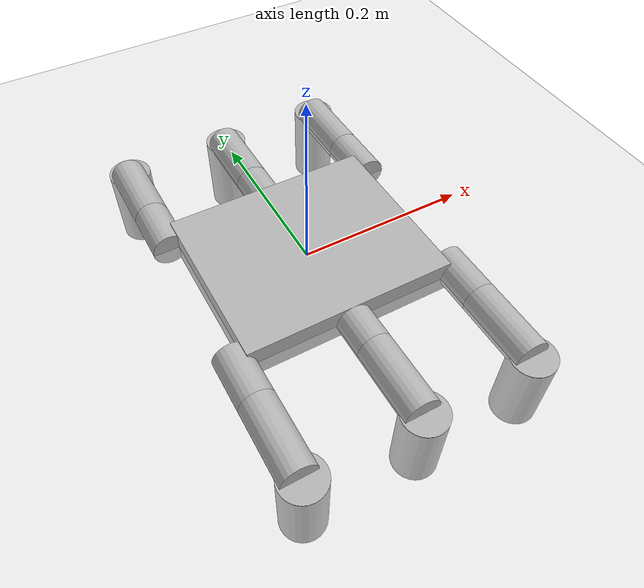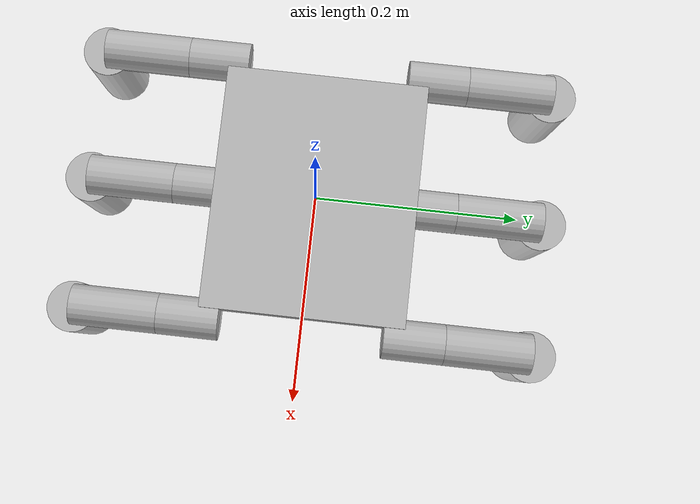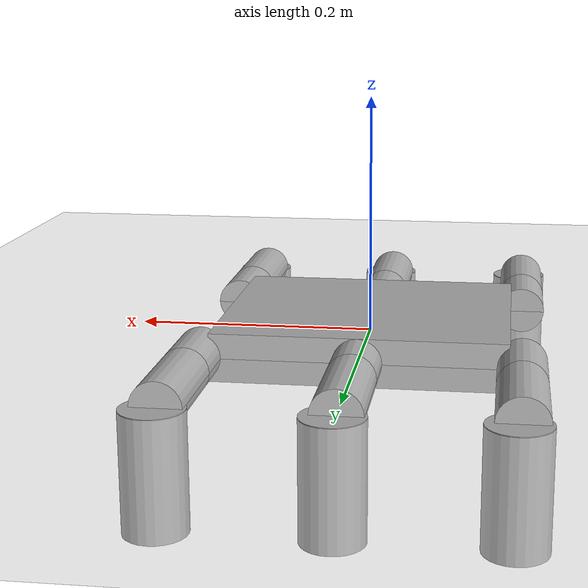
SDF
<?xml version="1.0"?>
<sdf version="1.5">
    <world name="default">
        <!-- A global light source -->
        <include>
            <uri>model://sun</uri>
        </include>
        <!-- A ground plane -->
        <include>
            <uri>model://ground_plane</uri>
        </include>
        <include>
            <pose>0 0 0 0 0 0</pose>
            <uri>model://hexapod</uri>
        </include>

    </world>
</sdf>

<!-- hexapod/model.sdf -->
<sdf version='1.5'>
    <model name='pexod'>

      <link name='base_link'>
        <pose>0 0 0 0 -0 0</pose>
        <inertial>
          <pose>0 0 0 0 -0 0</pose>
          <mass>1.031</mass>
          <inertia>
            <ixx>0.00357413</ixx>
            <ixy>0</ixy>
            <ixz>0</ixz>
            <iyy>0.00508627</iyy>
            <iyz>0</iyz>
            <izz>0.00838547</izz>
          </inertia>
        </inertial>
        <collision name='base_link_collision'>
          <pose>0 0 0 0 -0 0</pose>
          <geometry>
            <box>
              <size>0.24 0.2 0.04</size>
            </box>
          </geometry>
        </collision>
        <visual name='base_link_visual'>
          <pose>0 0 0 0 -0 0</pose>
          <geometry>
            <box>
              <size>0.24 0.2 0.04</size>
            </box>
          </geometry>
        </visual>
      </link>
      <link name='leg_0_1'>
        <pose>0.12 -0.08 0 0 -0 0</pose>
        <inertial>
          <pose>0.01 -0.03 0 1.5708 -0 0</pose>
          <mass>0.02</mass>
          <inertia>
            <ixx>8e-06</ixx>
            <ixy>0</ixy>
            <ixz>0</ixz>
            <iyy>8e-06</iyy>
            <iyz>0</iyz>
            <izz>6.66667e-07</izz>
          </inertia>
        </inertial>
        <collision name='leg_0_1_collision'>
          <pose>0.01 -0.03 0 1.5708 -0 0</pose>
          <geometry>
            <cylinder>
              <length>0.06</length>
              <radius>0.02</radius>
            </cylinder>
          </geometry>
        </collision>
        <visual name='leg_0_1_visual'>
          <pose>0.01 -0.03 0 1.5708 -0 0</pose>
          <geometry>
            <cylinder>
              <length>0.06</length>
              <radius>0.02</radius>
            </cylinder>
          </geometry>
        </visual>
      </link>
      <joint name='body_leg_0' type='revolute'>
        <child>leg_0_1</child>
        <parent>base_link</parent>
        <axis>
          <xyz>0 0 1</xyz>
          <limit>
            <lower>-0.785398</lower>
            <upper>0.785398</upper>
            <effort>20</effort>
            <velocity>2</velocity>
          </limit>
          <dynamics>
            <spring_reference>0</spring_reference>
            <spring_stiffness>0</spring_stiffness>
          </dynamics>
          <use_parent_model_frame>1</use_parent_model_frame>
        </axis>
      </joint>
      <link name='leg_0_2'>
        <pose>0.12 -0.14 0 0 -0 0</pose>
        <inertial>
          <pose>0.01 -0.0425 0 1.5708 -0 0</pose>
          <mass>0.184</mass>
          <inertia>
            <ixx>0.000129183</ixx>
            <ixy>0</ixy>
            <ixz>0</ixz>
            <iyy>0.000129183</iyy>
            <iyz>0</iyz>
            <izz>6.13333e-06</izz>
          </inertia>
        </inertial>
        <collision name='leg_0_2_collision'>
          <pose>0.01 -0.0425 0 1.5708 -0 0</pose>
          <geometry>
            <cylinder>
              <length>0.085</length>
              <radius>0.02</radius>
            </cylinder>
          </geometry>
        </collision>
        <visual name='leg_0_2_visual'>
          <pose>0.01 -0.0425 0 1.5708 -0 0</pose>
          <geometry>
            <cylinder>
              <length>0.085</length>
              <radius>0.02</radius>
            </cylinder>
          </geometry>
        </visual>
      </link>
      <joint name='leg_0_1_2' type='revolute'>
        <child>leg_0_2</child>
        <parent>leg_0_1</parent>
        <axis>
          <xyz>1 0 0</xyz>
          <limit>
            <lower>-0.785398</lower>
            <upper>0.785398</upper>
            <effort>20</effort>
            <velocity>2</velocity>
          </limit>
          <dynamics>
            <spring_reference>0</spring_reference>
            <spring_stiffness>0</spring_stiffness>
          </dynamics>
          <use_parent_model_frame>1</use_parent_model_frame>
        </axis>
      </joint>

      <link name='leg_0_3'>
        <pose>0.12 -0.225 0 1.5708 -0 0</pose>
        <inertial>
          <pose>0.0125 -0.0475 0 1.5708 -0 0</pose>
          <mass>0.184</mass>
          <inertia>
            <ixx>0.000129183</ixx>
            <ixy>0</ixy>
            <ixz>0</ixz>
            <iyy>0.000129183</iyy>
            <iyz>0</iyz>
            <izz>6.13333e-06</izz>
          </inertia>
        </inertial>
        <collision name='leg_0_3_collision'>
          <pose>0.0125 -0.0475 0 1.5708 -0 0</pose>
          <geometry>
            <cylinder>
              <length>0.095</length>
              <radius>0.025</radius>
            </cylinder>
          </geometry>
        </collision>
        <visual name='leg_0_3_visual'>
          <pose>0.0125 -0.0475 0 1.5708 -0 0</pose>
          <geometry>
            <cylinder>
              <length>0.095</length>
              <radius>0.025</radius>
            </cylinder>
          </geometry>
        </visual>
      </link>

      <joint name='leg_0_2_3' type='revolute'>
        <child>leg_0_3</child>
        <parent>leg_0_2</parent>
        <axis>
          <xyz>1 0 0</xyz>
          <limit>
            <lower>-0.785398</lower>
            <upper>0.785398</upper>
            <effort>20</effort>
            <velocity>2</velocity>
          </limit>
          <dynamics>
            <spring_reference>0</spring_reference>
            <spring_stiffness>0</spring_stiffness>
          </dynamics>
          <use_parent_model_frame>1</use_parent_model_frame>
        </axis>
      </joint>

      <link name='leg_1_1'>
        <pose>-0.01 -0.08 0 0 -0 0</pose>
        <inertial>
          <pose>0.01 -0.03 0 1.5708 -0 0</pose>
          <mass>0.02</mass>
          <inertia>
            <ixx>8e-06</ixx>
            <ixy>0</ixy>
            <ixz>0</ixz>
            <iyy>8e-06</iyy>
            <iyz>0</iyz>
            <izz>6.66667e-07</izz>
          </inertia>
        </inertial>
        <collision name='leg_1_1_collision'>
          <pose>0.01 -0.03 0 1.5708 -0 0</pose>
          <geometry>
            <cylinder>
              <length>0.06</length>
              <radius>0.02</radius>
            </cylinder>
          </geometry>
        </collision>
        <visual name='leg_1_1_visual'>
          <pose>0.01 -0.03 0 1.5708 -0 0</pose>
          <geometry>
            <cylinder>
              <length>0.06</length>
              <radius>0.02</radius>
            </cylinder>
          </geometry>
        </visual>
      </link>
      <joint name='body_leg_1' type='revolute'>
        <child>leg_1_1</child>
        <parent>base_link</parent>
        <axis>
          <xyz>0 0 1</xyz>
          <limit>
            <lower>-0.785398</lower>
            <upper>0.785398</upper>
            <effort>20</effort>
            <velocity>2</velocity>
          </limit>
          <dynamics>
            <spring_reference>0</spring_reference>
            <spring_stiffness>0</spring_stiffness>
          </dynamics>
          <use_parent_model_frame>1</use_parent_model_frame>
        </axis>
      </joint>
      <link name='leg_1_2'>
        <pose>-0.01 -0.14 0 0 -0 0</pose>
        <inertial>
          <pose>0.01 -0.0425 0 1.5708 -0 0</pose>
          <mass>0.184</mass>
          <inertia>
            <ixx>0.000129183</ixx>
            <ixy>0</ixy>
            <ixz>0</ixz>
            <iyy>0.000129183</iyy>
            <iyz>0</iyz>
            <izz>6.13333e-06</izz>
          </inertia>
        </inertial>
        <collision name='leg_1_2_collision'>
          <pose>0.01 -0.0425 0 1.5708 -0 0</pose>
          <geometry>
            <cylinder>
              <length>0.085</length>
              <radius>0.02</radius>
            </cylinder>
          </geometry>
        </collision>
        <visual name='leg_1_2_visual'>
          <pose>0.01 -0.0425 0 1.5708 -0 0</pose>
          <geometry>
            <cylinder>
              <length>0.085</length>
              <radius>0.02</radius>
            </cylinder>
          </geometry>
        </visual>
      </link>
      <joint name='leg_1_1_2' type='revolute'>
        <child>leg_1_2</child>
        <parent>leg_1_1</parent>
        <axis>
          <xyz>1 0 0</xyz>
          <limit>
            <lower>-0.785398</lower>
            <upper>0.785398</upper>
            <effort>20</effort>
            <velocity>2</velocity>
          </limit>
          <dynamics>
            <spring_reference>0</spring_reference>
            <spring_stiffness>0</spring_stiffness>
          </dynamics>
          <use_parent_model_frame>1</use_parent_model_frame>
        </axis>
      </joint>
      <link name='leg_1_3'>
        <pose>-0.01 -0.225 0 1.5708 -0 0</pose>
        <inertial>
          <pose>0.0125 -0.0475 0 1.5708 -0 0</pose>
          <mass>0.184</mass>
          <inertia>
            <ixx>0.000129183</ixx>
            <ixy>0</ixy>
            <ixz>0</ixz>
            <iyy>0.000129183</iyy>
            <iyz>0</iyz>
            <izz>6.13333e-06</izz>
          </inertia>
        </inertial>
        <collision name='leg_1_3_collision'>
          <pose>0.0125 -0.0475 0 1.5708 -0 0</pose>
          <geometry>
            <cylinder>
              <length>0.095</length>
              <radius>0.025</radius>
            </cylinder>
          </geometry>
        </collision>
        <visual name='leg_1_3_visual'>
          <pose>0.0125 -0.0475 0 1.5708 -0 0</pose>
          <geometry>
            <cylinder>
              <length>0.095</length>
              <radius>0.025</radius>
            </cylinder>
          </geometry>
        </visual>
      </link>
      <joint name='leg_1_2_3' type='revolute'>
        <child>leg_1_3</child>
        <parent>leg_1_2</parent>
        <axis>
          <xyz>1 0 0</xyz>
          <limit>
            <lower>-0.785398</lower>
            <upper>0.785398</upper>
            <effort>20</effort>
            <velocity>2</velocity>
          </limit>
          <dynamics>
            <spring_reference>0</spring_reference>
            <spring_stiffness>0</spring_stiffness>
          </dynamics>
          <use_parent_model_frame>1</use_parent_model_frame>
        </axis>
      </joint>

      <link name='leg_2_1'>
        <pose>-0.14 -0.08 0 0 -0 0</pose>
        <inertial>
          <pose>0.01 -0.03 0 1.5708 -0 0</pose>
          <mass>0.02</mass>
          <inertia>
            <ixx>8e-06</ixx>
            <ixy>0</ixy>
            <ixz>0</ixz>
            <iyy>8e-06</iyy>
            <iyz>0</iyz>
            <izz>6.66667e-07</izz>
          </inertia>
        </inertial>
        <collision name='leg_2_1_collision'>
          <pose>0.01 -0.03 0 1.5708 -0 0</pose>
          <geometry>
            <cylinder>
              <length>0.06</length>
              <radius>0.02</radius>
            </cylinder>
          </geometry>
        </collision>
        <visual name='leg_2_1_visual'>
          <pose>0.01 -0.03 0 1.5708 -0 0</pose>
          <geometry>
            <cylinder>
              <length>0.06</length>
              <radius>0.02</radius>
            </cylinder>
          </geometry>
        </visual>
      </link>
      <joint name='body_leg_2' type='revolute'>
        <child>leg_2_1</child>
        <parent>base_link</parent>
        <axis>
          <xyz>0 0 1</xyz>
          <limit>
            <lower>-0.785398</lower>
            <upper>0.785398</upper>
            <effort>20</effort>
            <velocity>2</velocity>
          </limit>
          <dynamics>
            <spring_reference>0</spring_reference>
            <spring_stiffness>0</spring_stiffness>
          </dynamics>
          <use_parent_model_frame>1</use_parent_model_frame>
        </axis>
      </joint>
      <link name='leg_2_2'>
        <pose>-0.14 -0.14 0 0 -0 0</pose>
        <inertial>
          <pose>0.01 -0.0425 0 1.5708 -0 0</pose>
          <mass>0.184</mass>
          <inertia>
            <ixx>0.000129183</ixx>
            <ixy>0</ixy>
            <ixz>0</ixz>
            <iyy>0.000129183</iyy>
            <iyz>0</iyz>
            <izz>6.13333e-06</izz>
          </inertia>
        </inertial>
        <collision name='leg_2_2_collision'>
          <pose>0.01 -0.0425 0 1.5708 -0 0</pose>
          <geometry>
            <cylinder>
              <length>0.085</length>
              <radius>0.02</radius>
            </cylinder>
          </geometry>
        </collision>
        <visual name='leg_2_2_visual'>
          <pose>0.01 -0.0425 0 1.5708 -0 0</pose>
          <geometry>
            <cylinder>
              <length>0.085</length>
              <radius>0.02</radius>
            </cylinder>
          </geometry>
        </visual>
      </link>
      <joint name='leg_2_1_2' type='revolute'>
        <child>leg_2_2</child>
        <parent>leg_2_1</parent>
        <axis>
          <xyz>1 0 0</xyz>
          <limit>
            <lower>-0.785398</lower>
            <upper>0.785398</upper>
            <effort>20</effort>
            <velocity>2</velocity>
          </limit>
          <dynamics>
            <spring_reference>0</spring_reference>
            <spring_stiffness>0</spring_stiffness>
          </dynamics>
          <use_parent_model_frame>1</use_parent_model_frame>
        </axis>
      </joint>
      <link name='leg_2_3'>
        <pose>-0.14 -0.225 0 1.5708 -0 0</pose>
        <inertial>
          <pose>0.0125 -0.0475 0 1.5708 -0 0</pose>
          <mass>0.184</mass>
          <inertia>
            <ixx>0.000129183</ixx>
            <ixy>0</ixy>
            <ixz>0</ixz>
            <iyy>0.000129183</iyy>
            <iyz>0</iyz>
            <izz>6.13333e-06</izz>
          </inertia>
        </inertial>
        <collision name='leg_2_3_collision'>
          <pose>0.0125 -0.0475 0 1.5708 -0 0</pose>
          <geometry>
            <cylinder>
              <length>0.095</length>
              <radius>0.025</radius>
            </cylinder>
          </geometry>
        </collision>
        <visual name='leg_2_3_visual'>
          <pose>0.0125 -0.0475 0 1.5708 -0 0</pose>
          <geometry>
            <cylinder>
              <length>0.095</length>
              <radius>0.025</radius>
            </cylinder>
          </geometry>
        </visual>
      </link>
      <joint name='leg_2_2_3' type='revolute'>
        <child>leg_2_3</child>
        <parent>leg_2_2</parent>
        <axis>
          <xyz>1 0 0</xyz>
          <limit>
            <lower>-0.785398</lower>
            <upper>0.785398</upper>
            <effort>20</effort>
            <velocity>2</velocity>
          </limit>
          <dynamics>
            <spring_reference>0</spring_reference>
            <spring_stiffness>0</spring_stiffness>
          </dynamics>
          <use_parent_model_frame>1</use_parent_model_frame>
        </axis>
      </joint>

      <link name='leg_3_1'>
        <pose>-0.14 0.08 0 0 -0 0</pose>
        <inertial>
          <pose>0.01 0.03 0 1.5708 -0 0</pose>
          <mass>0.02</mass>
          <inertia>
            <ixx>8e-06</ixx>
            <ixy>0</ixy>
            <ixz>0</ixz>
            <iyy>8e-06</iyy>
            <iyz>0</iyz>
            <izz>6.66667e-07</izz>
          </inertia>
        </inertial>
        <collision name='leg_3_1_collision'>
          <pose>0.01 0.03 0 1.5708 -0 0</pose>
          <geometry>
            <cylinder>
              <length>0.06</length>
              <radius>0.02</radius>
            </cylinder>
          </geometry>
        </collision>
        <visual name='leg_3_1_visual'>
          <pose>0.01 0.03 0 1.5708 -0 0</pose>
          <geometry>
            <cylinder>
              <length>0.06</length>
              <radius>0.02</radius>
            </cylinder>
          </geometry>
        </visual>
      </link>
      <joint name='body_leg_3' type='revolute'>
        <child>leg_3_1</child>
        <parent>base_link</parent>
        <axis>
          <xyz>0 0 1</xyz>
          <limit>
            <lower>-0.785398</lower>
            <upper>0.785398</upper>
            <effort>20</effort>
            <velocity>2</velocity>
          </limit>
          <dynamics>
            <spring_reference>0</spring_reference>
            <spring_stiffness>0</spring_stiffness>
          </dynamics>
          <use_parent_model_frame>1</use_parent_model_frame>
        </axis>
      </joint>
      <link name='leg_3_2'>
        <pose>-0.14 0.14 0 0 -0 0</pose>
        <inertial>
          <pose>0.01 0.0425 0 1.5708 -0 0</pose>
          <mass>0.184</mass>
          <inertia>
            <ixx>0.000129183</ixx>
            <ixy>0</ixy>
            <ixz>0</ixz>
            <iyy>0.000129183</iyy>
            <iyz>0</iyz>
            <izz>6.13333e-06</izz>
          </inertia>
        </inertial>
        <collision name='leg_3_2_collision'>
          <pose>0.01 0.0425 0 1.5708 -0 0</pose>
          <geometry>
            <cylinder>
              <length>0.085</length>
              <radius>0.02</radius>
            </cylinder>
          </geometry>
        </collision>
        <visual name='leg_3_2_visual'>
          <pose>0.01 0.0425 0 1.5708 -0 0</pose>
          <geometry>
            <cylinder>
              <length>0.085</length>
              <radius>0.02</radius>
            </cylinder>
          </geometry>
        </visual>
      </link>
      <joint name='leg_3_1_2' type='revolute'>
        <child>leg_3_2</child>
        <parent>leg_3_1</parent>
        <axis>
          <xyz>1 0 0</xyz>
          <limit>
            <lower>-0.785398</lower>
            <upper>0.785398</upper>
            <effort>20</effort>
            <velocity>2</velocity>
          </limit>
          <dynamics>
            <spring_reference>0</spring_reference>
            <spring_stiffness>0</spring_stiffness>
          </dynamics>
          <use_parent_model_frame>1</use_parent_model_frame>
        </axis>
      </joint>
      <link name='leg_3_3'>
        <pose>-0.14 0.225 0 -1.5708 0 0</pose>
        <inertial>
          <pose>0.0125 0.0475 0 1.5708 -0 0</pose>
          <mass>0.184</mass>
          <inertia>
            <ixx>0.000129183</ixx>
            <ixy>0</ixy>
            <ixz>0</ixz>
            <iyy>0.000129183</iyy>
            <iyz>0</iyz>
            <izz>6.13333e-06</izz>
          </inertia>
        </inertial>
        <collision name='leg_3_3_collision'>
          <pose>0.0125 0.0475 0 1.5708 -0 0</pose>
          <geometry>
            <cylinder>
              <length>0.095</length>
              <radius>0.025</radius>
            </cylinder>
          </geometry>
        </collision>
        <visual name='leg_3_3_visual'>
          <pose>0.0125 0.0475 0 1.5708 -0 0</pose>
          <geometry>
            <cylinder>
              <length>0.095</length>
              <radius>0.025</radius>
            </cylinder>
          </geometry>
        </visual>
      </link>
      <joint name='leg_3_2_3' type='revolute'>
        <child>leg_3_3</child>
        <parent>leg_3_2</parent>
        <axis>
          <xyz>1 0 0</xyz>
          <limit>
            <lower>-0.785398</lower>
            <upper>0.785398</upper>
            <effort>20</effort>
            <velocity>2</velocity>
          </limit>
          <dynamics>
            <spring_reference>0</spring_reference>
            <spring_stiffness>0</spring_stiffness>
          </dynamics>
          <use_parent_model_frame>1</use_parent_model_frame>
        </axis>
      </joint>
      <link name='leg_4_1'>
        <pose>-0.01 0.08 0 0 -0 0</pose>
        <inertial>
          <pose>0.01 0.03 0 1.5708 -0 0</pose>
          <mass>0.02</mass>
          <inertia>
            <ixx>8e-06</ixx>
            <ixy>0</ixy>
            <ixz>0</ixz>
            <iyy>8e-06</iyy>
            <iyz>0</iyz>
            <izz>6.66667e-07</izz>
          </inertia>
        </inertial>
        <collision name='leg_4_1_collision'>
          <pose>0.01 0.03 0 1.5708 -0 0</pose>
          <geometry>
            <cylinder>
              <length>0.06</length>
              <radius>0.02</radius>
            </cylinder>
          </geometry>
        </collision>
        <visual name='leg_4_1_visual'>
          <pose>0.01 0.03 0 1.5708 -0 0</pose>
          <geometry>
            <cylinder>
              <length>0.06</length>
              <radius>0.02</radius>
            </cylinder>
          </geometry>
        </visual>
      </link>
      <joint name='body_leg_4' type='revolute'>
        <child>leg_4_1</child>
        <parent>base_link</parent>
        <axis>
          <xyz>0 0 1</xyz>
          <limit>
            <lower>-0.785398</lower>
            <upper>0.785398</upper>
            <effort>20</effort>
            <velocity>2</velocity>
          </limit>
          <dynamics>
            <spring_reference>0</spring_reference>
            <spring_stiffness>0</spring_stiffness>
          </dynamics>
          <use_parent_model_frame>1</use_parent_model_frame>
        </axis>
      </joint>
      <link name='leg_4_2'>
        <pose>-0.01 0.14 0 0 -0 0</pose>
        <inertial>
          <pose>0.01 0.0425 0 1.5708 -0 0</pose>
          <mass>0.184</mass>
          <inertia>
            <ixx>0.000129183</ixx>
            <ixy>0</ixy>
            <ixz>0</ixz>
            <iyy>0.000129183</iyy>
            <iyz>0</iyz>
            <izz>6.13333e-06</izz>
          </inertia>
        </inertial>
        <collision name='leg_4_2_collision'>
          <pose>0.01 0.0425 0 1.5708 -0 0</pose>
          <geometry>
            <cylinder>
              <length>0.085</length>
              <radius>0.02</radius>
            </cylinder>
          </geometry>
        </collision>
        <visual name='leg_4_2_visual'>
          <pose>0.01 0.0425 0 1.5708 -0 0</pose>
          <geometry>
            <cylinder>
              <length>0.085</length>
              <radius>0.02</radius>
            </cylinder>
          </geometry>
        </visual>
      </link>
      <joint name='leg_4_1_2' type='revolute'>
        <child>leg_4_2</child>
        <parent>leg_4_1</parent>
        <axis>
          <xyz>1 0 0</xyz>
          <limit>
            <lower>-0.785398</lower>
            <upper>0.785398</upper>
            <effort>20</effort>
            <velocity>2</velocity>
          </limit>
          <dynamics>
            <spring_reference>0</spring_reference>
            <spring_stiffness>0</spring_stiffness>
          </dynamics>
          <use_parent_model_frame>1</use_parent_model_frame>
        </axis>
      </joint>
      <link name='leg_4_3'>
        <pose>-0.01 0.225 0 -1.5708 0 0</pose>
        <inertial>
          <pose>0.0125 0.0475 0 1.5708 -0 0</pose>
          <mass>0.184</mass>
          <inertia>
            <ixx>0.000129183</ixx>
            <ixy>0</ixy>
            <ixz>0</ixz>
            <iyy>0.000129183</iyy>
            <iyz>0</iyz>
            <izz>6.13333e-06</izz>
          </inertia>
        </inertial>
        <collision name='leg_4_3_collision'>
          <pose>0.0125 0.0475 0 1.5708 -0 0</pose>
          <geometry>
            <cylinder>
              <length>0.095</length>
              <radius>0.025</radius>
            </cylinder>
          </geometry>
        </collision>
        <visual name='leg_4_3_visual'>
          <pose>0.0125 0.0475 0 1.5708 -0 0</pose>
          <geometry>
            <cylinder>
              <length>0.095</length>
              <radius>0.025</radius>
            </cylinder>
          </geometry>
        </visual>
      </link>
      <joint name='leg_4_2_3' type='revolute'>
        <child>leg_4_3</child>
        <parent>leg_4_2</parent>
        <axis>
          <xyz>1 0 0</xyz>
          <limit>
            <lower>-0.785398</lower>
            <upper>0.785398</upper>
            <effort>20</effort>
            <velocity>2</velocity>
          </limit>
          <dynamics>
            <spring_reference>0</spring_reference>
            <spring_stiffness>0</spring_stiffness>
          </dynamics>
          <use_parent_model_frame>1</use_parent_model_frame>
        </axis>
      </joint>
      <link name='leg_5_1'>
        <pose>0.12 0.08 0 0 -0 0</pose>
        <inertial>
          <pose>0.01 0.03 0 1.5708 -0 0</pose>
          <mass>0.02</mass>
          <inertia>
            <ixx>8e-06</ixx>
            <ixy>0</ixy>
            <ixz>0</ixz>
            <iyy>8e-06</iyy>
            <iyz>0</iyz>
            <izz>6.66667e-07</izz>
          </inertia>
        </inertial>
        <collision name='leg_5_1_collision'>
          <pose>0.01 0.03 0 1.5708 -0 0</pose>
          <geometry>
            <cylinder>
              <length>0.06</length>
              <radius>0.02</radius>
            </cylinder>
          </geometry>
        </collision>
        <visual name='leg_5_1_visual'>
          <pose>0.01 0.03 0 1.5708 -0 0</pose>
          <geometry>
            <cylinder>
              <length>0.06</length>
              <radius>0.02</radius>
            </cylinder>
          </geometry>
        </visual>
      </link>
      <joint name='body_leg_5' type='revolute'>
        <child>leg_5_1</child>
        <parent>base_link</parent>
        <axis>
          <xyz>0 0 1</xyz>
          <limit>
            <lower>-0.785398</lower>
            <upper>0.785398</upper>
            <effort>20</effort>
            <velocity>2</velocity>
          </limit>
          <dynamics>
            <spring_reference>0</spring_reference>
            <spring_stiffness>0</spring_stiffness>
          </dynamics>
          <use_parent_model_frame>1</use_parent_model_frame>
        </axis>
      </joint>
      <link name='leg_5_2'>
        <pose>0.12 0.14 0 0 -0 0</pose>
        <inertial>
          <pose>0.01 0.0425 0 1.5708 -0 0</pose>
          <mass>0.184</mass>
          <inertia>
            <ixx>0.000129183</ixx>
            <ixy>0</ixy>
            <ixz>0</ixz>
            <iyy>0.000129183</iyy>
            <iyz>0</iyz>
            <izz>6.13333e-06</izz>
          </inertia>
        </inertial>
        <collision name='leg_5_2_collision'>
          <pose>0.01 0.0425 0 1.5708 -0 0</pose>
          <geometry>
            <cylinder>
              <length>0.085</length>
              <radius>0.02</radius>
            </cylinder>
          </geometry>
        </collision>
        <visual name='leg_5_2_visual'>
          <pose>0.01 0.0425 0 1.5708 -0 0</pose>
          <geometry>
            <cylinder>
              <length>0.085</length>
              <radius>0.02</radius>
            </cylinder>
          </geometry>
        </visual>
      </link>
      <joint name='leg_5_1_2' type='revolute'>
        <child>leg_5_2</child>
        <parent>leg_5_1</parent>
        <axis>
          <xyz>1 0 0</xyz>
          <limit>
            <lower>-0.785398</lower>
            <upper>0.785398</upper>
            <effort>20</effort>
            <velocity>2</velocity>
          </limit>
          <dynamics>
            <spring_reference>0</spring_reference>
            <spring_stiffness>0</spring_stiffness>
          </dynamics>
          <use_parent_model_frame>1</use_parent_model_frame>
        </axis>
      </joint>
      <link name='leg_5_3'>
        <pose>0.12 0.225 0 -1.5708 0 0</pose>
        <inertial>
          <pose>0.0125 0.0475 0 1.5708 -0 0</pose>
          <mass>0.184</mass>
          <inertia>
            <ixx>0.000129183</ixx>
            <ixy>0</ixy>
            <ixz>0</ixz>
            <iyy>0.000129183</iyy>
            <iyz>0</iyz>
            <izz>6.13333e-06</izz>
          </inertia>
        </inertial>
        <collision name='leg_5_3_collision'>
          <pose>0.0125 0.0475 0 1.5708 -0 0</pose>
          <geometry>
            <cylinder>
              <length>0.095</length>
              <radius>0.025</radius>
            </cylinder>
          </geometry>
        </collision>
        <visual name='leg_5_3_visual'>
          <pose>0.0125 0.0475 0 1.5708 -0 0</pose>
          <geometry>
            <cylinder>
              <length>0.095</length>
              <radius>0.025</radius>
            </cylinder>
          </geometry>
        </visual>
      </link>
      <joint name='leg_5_2_3' type='revolute'>
        <child>leg_5_3</child>
        <parent>leg_5_2</parent>
        <axis>
          <xyz>1 0 0</xyz>
          <limit>
            <lower>-0.785398</lower>
            <upper>0.785398</upper>
            <effort>20</effort>
            <velocity>2</velocity>
          </limit>
          <dynamics>
            <spring_reference>0</spring_reference>
            <spring_stiffness>0</spring_stiffness>
          </dynamics>
          <use_parent_model_frame>1</use_parent_model_frame>
        </axis>
      </joint>

      <plugin name="pexod_control" filename="libpexod_plugin.so"/>

    </model>
  </sdf>
